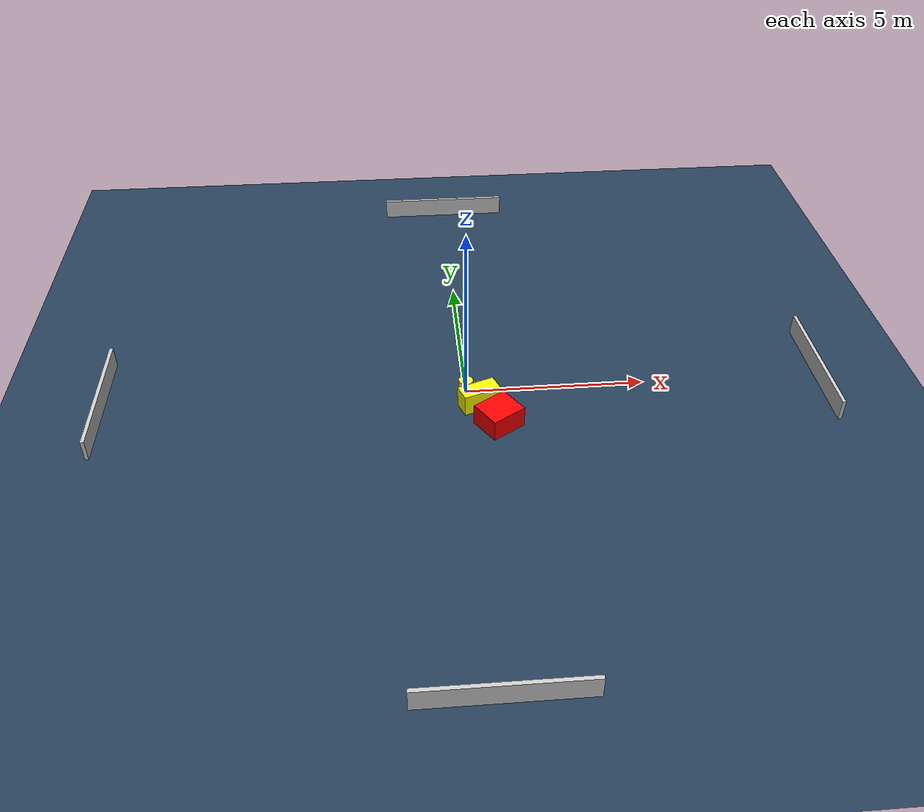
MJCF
<?xml version="1.0" ?>
<mujoco model="generated_environment">
  <option timestep="0.01" integrator="RK4" cone="elliptic"/>
  <default>
    <geom density="1"/>
  </default>
  <asset>
    <texture builtin="gradient" height="3072" name="skybox" rgb1="0.3 0.5 0.7" rgb2="0 0 0" type="skybox" width="512"/>
    <texture builtin="checker" height="300" name="groundplane" rgb1="0.2 0.3 0.4" rgb2="0.1 0.2 0.3" type="2d" width="300"/>
    <material name="groundplane" reflectance="0.2" texrepeat="5 5" texture="groundplane"/>
  </asset>
  <worldbody>
    <light dir="0 0 -1" directional="true" pos="0 0 1.5"/>
    <geom condim="3" friction="0.5 0.005 0.001" material="groundplane" name="floor" pos="0 0 0" size="0 0 0.05" type="plane"/>
    <body name="walls">
      <geom name="wall_1" condim="4" pos="-10.0 0.0 0.3" rgba="0.800000011920929 0.800000011920929 0.800000011920929 1.0" size="0.05 2.0 0.3" type="box"/>
      <geom name="wall_2" condim="4" pos="10.0 0.0 0.3" rgba="0.800000011920929 0.800000011920929 0.800000011920929 1.0" size="0.05 2.0 0.3" type="box"/>
      <geom name="wall_3" condim="4" pos="0.0 -10.0 0.3" rgba="0.800000011920929 0.800000011920929 0.800000011920929 1.0" size="2.0 0.05 0.3" type="box"/>
      <geom name="wall_4" condim="4" pos="0.0 10.0 0.3" rgba="0.800000011920929 0.800000011920929 0.800000011920929 1.0" size="2.0 0.05 0.3" type="box"/>
    </body>
    <body name="robot">
      <joint name="joint_x" type="slide" pos="0 0 0" axis="1 0 0"/>
      <joint name="joint_y" type="slide" pos="0 0 0" axis="0 1 0"/>
      <geom name="robot" type="cylinder" pos="0.0 0.0 0.2" size="0.2 0.2 0.0" mass="5.0" friction="1.0 0.005 0.0001" condim="4" rgba="1.0 1.0 0.0 1.0"/>
    </body>
    <body name="obstacle_1_movable">
      <geom name="obstacle_1_movable" condim="4" pos="0.3110587037301186 -0.6098596642022718 0.3" euler="0 0 200.38314904706644" friction="0.0 0.005 0.001" rgba="1.0 1.0 0.0 1.0" size="0.5346198510246227 0.25158090202583594 0.3" type="box" mass="0.1"/>
      <joint type="free"/>
    </body>
    <body name="obstacle_2_static">
      <geom name="obstacle_2_static" condim="4" pos="0.7756092411774947 -1.4565326399322538 0.3" euler="0 0 212.695734740749" friction="0.0 0.005 0.001" rgba="1.0 0.0 0.0 1.0" size="0.507951469796177 0.4486599625317891 0.3" type="box"/>
    </body>
  </worldbody>
  <actuator>
    <motor name="actuator_x" joint="joint_x" gear="1" ctrlrange="-1 1"/>
    <motor name="actuator_y" joint="joint_y" gear="1" ctrlrange="-1 1"/>
  </actuator>
</mujoco>
